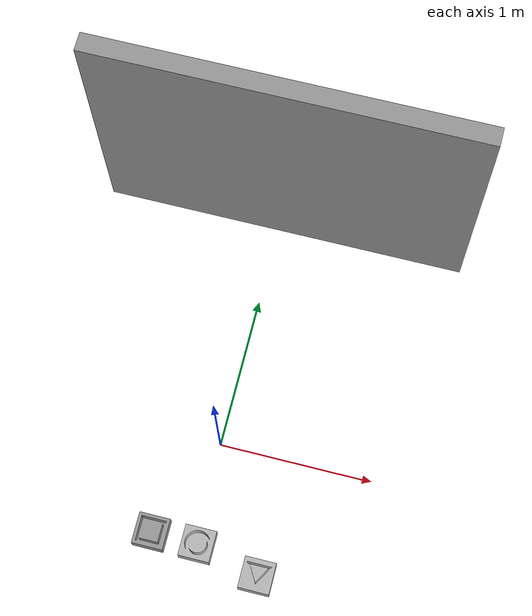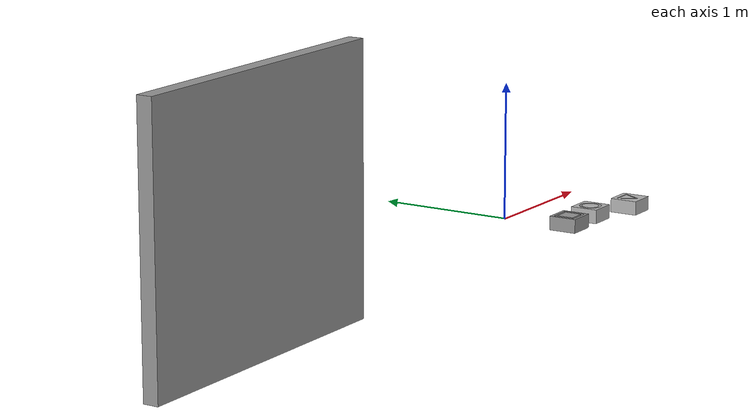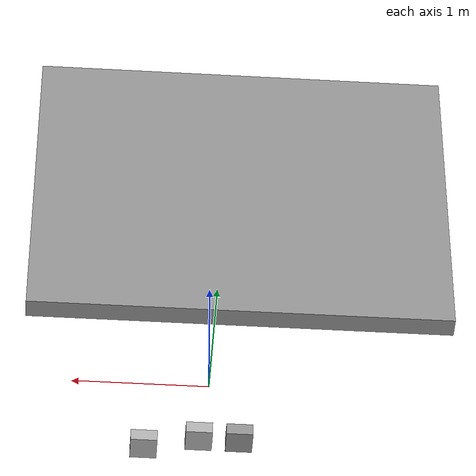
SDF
<?xml version='1.0'?>
<sdf version='1.6'>
  <model name='experiment-1'>
    <link name='link_0'>
      <inertial>
        <mass>0.863356</mass>
        <inertia>
          <ixx>0.386752</ixx>
          <ixy>0</ixy>
          <ixz>0</ixz>
          <iyy>0.939251</iyy>
          <iyz>0</iyz>
          <izz>0.5551</izz>
        </inertia>
        <pose frame=''>0 0 0 0 -0 0</pose>
      </inertial>
      <pose frame=''>-0.0895 2.12756 -0.22336 0 -0 0</pose>
      <visual name='visual'>
        <pose frame=''>0 0 0 0 -0 0</pose>
        <geometry>
          <box>
            <size>2.77442 0.13445 2.31463</size>
          </box>
        </geometry>
        <material>
          <lighting>1</lighting>
          <script>
            <uri>file://media/materials/scripts/gazebo.material</uri>
            <name>Gazebo/Grey</name>
          </script>
        </material>
        <transparency>0</transparency>
        <cast_shadows>1</cast_shadows>
      </visual>
      <collision name='collision'>
        <laser_retro>0</laser_retro>
        <max_contacts>10</max_contacts>
        <pose frame=''>0 0 0 0 -0 0</pose>
        <geometry>
          <box>
            <size>2.77442 0.13445 2.31463</size>
          </box>
        </geometry>
        <surface>
          <friction>
            <ode>
              <mu>1</mu>
              <mu2>1</mu2>
              <fdir1>0 0 0</fdir1>
              <slip1>0</slip1>
              <slip2>0</slip2>
            </ode>
            <torsional>
              <coefficient>1</coefficient>
              <patch_radius>0</patch_radius>
              <surface_radius>0</surface_radius>
              <use_patch_radius>1</use_patch_radius>
              <ode>
                <slip>0</slip>
              </ode>
            </torsional>
          </friction>
          <bounce>
            <restitution_coefficient>0</restitution_coefficient>
            <threshold>1e+06</threshold>
          </bounce>
          <contact>
            <collide_without_contact>0</collide_without_contact>
            <collide_without_contact_bitmask>1</collide_without_contact_bitmask>
            <collide_bitmask>1</collide_bitmask>
            <ode>
              <soft_cfm>0</soft_cfm>
              <soft_erp>0.2</soft_erp>
              <kp>1e+13</kp>
              <kd>1</kd>
              <max_vel>0.01</max_vel>
              <min_depth>0</min_depth>
            </ode>
            <bullet>
              <split_impulse>1</split_impulse>
              <split_impulse_penetration_threshold>-0.01</split_impulse_penetration_threshold>
              <soft_cfm>0</soft_cfm>
              <soft_erp>0.2</soft_erp>
              <kp>1e+13</kp>
              <kd>1</kd>
            </bullet>
          </contact>
        </surface>
      </collision>
    </link>
    <model name='big_circle_path'>
      <pose frame=''>-0.089441 -0.676577 0.080044 0 -0 0</pose>
      <static>1</static>
      <link name='link'>
        <inertial>
          <mass>1</mass>
          <inertia>
            <ixx>0.083</ixx>
            <ixy>0</ixy>
            <ixz>0</ixz>
            <iyy>0.083</iyy>
            <iyz>0</iyz>
            <izz>0.083</izz>
          </inertia>
        </inertial>
        <collision name='collision'>
          <geometry>
            <mesh>
              <uri>model://bigCircle/BigCircle.stl</uri>
              <scale>0.001 0.001 0.001</scale>
            </mesh>
          </geometry>
        </collision>
        <visual name='visual'>
          <geometry>
            <mesh>
              <uri>model://bigCircle/BigCircle.stl</uri>
              <scale>0.001 0.001 0.001</scale>
            </mesh>
          </geometry>
        </visual>
      </link>
    </model>
    <model name='big_triangle_path'>
      <pose frame=''>0.454342 -0.78014 0.069892 0 0 -3.1392</pose>
      <static>1</static>
      <link name='link'>
        <inertial>
          <mass>1</mass>
          <inertia>
            <ixx>0.083</ixx>
            <ixy>0</ixy>
            <ixz>0</ixz>
            <iyy>0.083</iyy>
            <iyz>0</iyz>
            <izz>0.083</izz>
          </inertia>
        </inertial>
        <collision name='collision'>
          <geometry>
            <mesh>
              <uri>model://bigTriangle/BigTriangle.stl</uri>
              <scale>0.001 0.001 0.001</scale>
            </mesh>
          </geometry>
        </collision>
        <visual name='visual'>
          <geometry>
            <mesh>
              <uri>model://bigTriangle/BigTriangle.stl</uri>
              <scale>0.001 0.001 0.001</scale>
            </mesh>
          </geometry>
        </visual>
      </link>
    </model>
    <model name='bigsquare'>
      <pose frame=''>-0.275401 -0.670843 0.073424 0 -0 0</pose>
      <static>0</static>
      <link name='link'>
        <inertial>
          <mass>1</mass>
        </inertial>
        <collision name='collision'>
          <geometry>
            <mesh>
              <uri>model://bigSquare/BigSquare.stl</uri>
              <scale>0.001 0.001 0.001</scale>
            </mesh>
          </geometry>
        </collision>
        <visual name='visual'>
          <geometry>
            <mesh>
              <uri>model://bigSquare/BigSquare.stl</uri>
              <scale>0.001 0.001 0.001</scale>
            </mesh>
          </geometry>
          <material>
            <script>
              <uri>file://media/materials/scripts/gazebo.material</uri>
              <name>Gazebo/Grey</name>
            </script>
          </material>
        </visual>
      </link>
    </model>
    <static>0</static>
    <allow_auto_disable>1</allow_auto_disable>
  </model>
</sdf>
